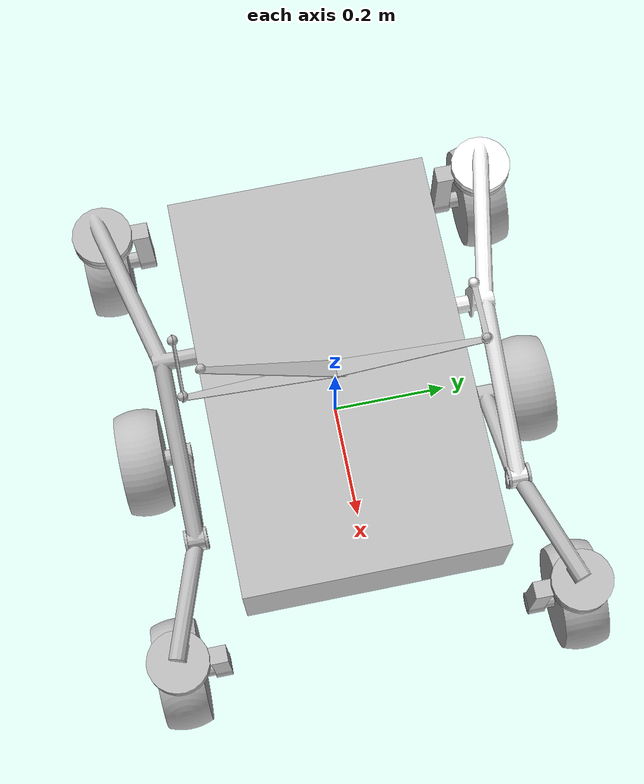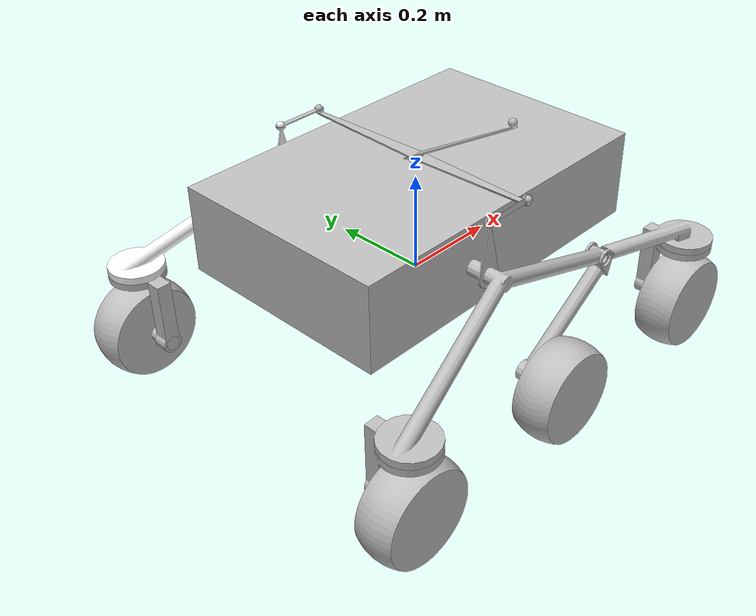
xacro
<?xml version="1.0" encoding="utf-8"?>
<robot
  name="rover"
  xmlns:xacro="http://www.ros.org/wiki/xacro">
  <link
    name="base_link">
    <inertial>
      <origin
        xyz="1.8866E-22 -4.033E-05 -0.00058075"
        rpy="0 0 0" />
      <mass
        value="54.772" />
      <inertia
        ixx="2.3882"
        ixy="-6.2633E-20"
        ixz="-2.4518E-16"
        iyy="3.1726"
        iyz="1.2828E-06"
        izz="1.0654" />
    </inertial>
    <visual>
      <origin
        xyz="0 0 0"
        rpy="0 0 0" />
      <geometry>
        <mesh
          filename="package://rover_description/meshes/base_link.STL" />
      </geometry>
      <material
        name="">
        <color
          rgba="0.74902 0.74902 0.74902 1" />
      </material>
    </visual>
    <collision>
      <origin
        xyz="0 0 0"
        rpy="0 0 0" />
      <geometry>
        <mesh
          filename="package://rover_description/meshes/base_link.STL" />
      </geometry>
    </collision>
  </link>
  <link
    name="Differ">
    <inertial>
      <origin
        xyz="-1.2186E-18 -0.0017879 2.3859E-18"
        rpy="0 0 0" />
      <mass
        value="0.040647" />
      <inertia
        ixx="0.0008313"
        ixy="6.6215E-23"
        ixz="-4.0035E-20"
        iyy="0.00083241"
        iyz="1.0165E-19"
        izz="2.1656E-06" />
    </inertial>
    <visual>
      <origin
        xyz="0 0 0"
        rpy="0 0 0" />
      <geometry>
        <mesh
          filename="package://rover_description/meshes/Differ.STL" />
      </geometry>
      <material
        name="">
        <color
          rgba="0.74902 0.74902 0.74902 1" />
      </material>
    </visual>
    <collision>
      <origin
        xyz="0 0 0"
        rpy="0 0 0" />
      <geometry>
        <mesh
          filename="package://rover_description/meshes/Differ.STL" />
      </geometry>
    </collision>
  </link>
  <joint
    name="differ_joint"
    type="fixed">
    <origin
      xyz="0 0 0.0945"
      rpy="-1.5707963267949 0 -1.5707963267949" />
    <parent
      link="base_link" />
    <child
      link="Differ" />
    <axis
      xyz="0 0 0" />
  </joint>
  <link
    name="Rocker_L">
    <inertial>
      <origin
        xyz="0.024855 -0.059946 0.064498"
        rpy="0 0 0" />
      <mass
        value="0.63929" />
      <inertia
        ixx="0.024711"
        ixy="0.0007168"
        ixz="-0.003432"
        iyy="0.024446"
        iyz="0.0025498"
        izz="0.0019279" />
    </inertial>
    <visual>
      <origin
        xyz="0 0 0"
        rpy="0 0 0" />
      <geometry>
        <mesh
          filename="package://rover_description/meshes/Rocker_L.STL" />
      </geometry>
      <material
        name="">
        <color
          rgba="0.74902 0.74902 0.74902 1" />
      </material>
    </visual>
    <collision>
      <origin
        xyz="0 0 0"
        rpy="0 0 0" />
      <geometry>
        <mesh
          filename="package://rover_description/meshes/Rocker_L.STL" />
      </geometry>
    </collision>
  </link>
  <joint
    name="rocker_left_joint"
    type="fixed">
    <origin
      xyz="0.2878 -0.1 0"
      rpy="1.5708 0 0" />
    <parent
      link="base_link" />
    <child
      link="Rocker_L" />
    <axis
      xyz="0 0 0" />
  </joint>
  <link
    name="Rotate__L_FRONT">
    <inertial>
      <origin
        xyz="-0.033142 -0.036679 0"
        rpy="0 0 0" />
      <mass
        value="0.25826" />
      <inertia
        ixx="0.00057506"
        ixy="-0.00027903"
        ixz="7.0125E-21"
        iyy="0.00053749"
        iyz="-1.8688E-20"
        izz="0.00088635" />
    </inertial>
    <visual>
      <origin
        xyz="0 0 0"
        rpy="0 0 0" />
      <geometry>
        <mesh
          filename="package://rover_description/meshes/Rotate__L_FRONT.STL" />
      </geometry>
      <material
        name="">
        <color
          rgba="0.74902 0.74902 0.74902 1" />
      </material>
    </visual>
    <collision>
      <origin
        xyz="0 0 0"
        rpy="0 0 0" />
      <geometry>
        <mesh
          filename="package://rover_description/meshes/Rotate__L_FRONT.STL" />
      </geometry>
    </collision>
  </link>

<!-- ═══ РУЛЕВЫЕ СУСТАВЫ (4 шт.) ═══════════════════════════════ -->

  <!-- Переднее левое рулевое -->
  <joint name="rotate_left_front_joint" type="revolute">
    <origin xyz="0.0697 -0.12285 0.3" rpy="0 0 0" />
    <parent link="Rocker_L" />
    <child link="Rotate__L_FRONT" />
    <axis xyz="0 1 0" />
    <limit lower="-0.7" upper="0.7" effort="10.0" velocity="1.0"/>
  </joint>
  <link
    name="Wheel_L_FRONT">
    <inertial>
      <origin
        xyz="-0.0009535 5.5511E-17 -5.5511E-17"
        rpy="0 0 0" />
      <mass
        value="2.4144" />
      <inertia
        ixx="0.011293"
        ixy="-1.0889E-18"
        ixz="7.1213E-19"
        iyy="0.0070125"
        iyz="1.9516E-18"
        izz="0.0070129" />
    </inertial>
    <visual>
      <origin
        xyz="0 0 0"
        rpy="0 0 0" />
      <geometry>
        <mesh
          filename="package://rover_description/meshes/Wheel_L_FRONT.STL" />
      </geometry>
      <material
        name="">
        <color
          rgba="0.74902 0.74902 0.74902 1" />
      </material>
    </visual>
    <collision>
      <origin
        xyz="0 0 0"
        rpy="0 0 0" />
      <geometry>
        <mesh
          filename="package://rover_description/meshes/Wheel_L_FRONT.STL" />
      </geometry>
    </collision>
  </link>

  <!-- ═══ ВЕДУЩИЕ СУСТАВЫ (6 шт.) ════════════════════════════════ -->

  <!-- Левое переднее колесо -->
  <joint name="wheel_left_front_joint" type="continuous">
    <origin xyz="0.00530000000000003 -0.1359 0"
            rpy="-1.90508433194656 0 0" />
    <parent link="Rotate__L_FRONT" />
    <child link="Wheel_L_FRONT" />
    <axis xyz="1 0 0" />
  </joint>
  <link
    name="Tiaga_L">
    <inertial>
      <origin
        xyz="4.8626E-09 0.0030688 -0.05"
        rpy="0 0 0" />
      <mass
        value="0.0052374" />
      <inertia
        ixx="6.9535E-06"
        ixy="2.5321E-13"
        ixz="-7.5811E-12"
        iyy="7.0028E-06"
        iyz="6.3608E-14"
        izz="1.0346E-07" />
    </inertial>
    <visual>
      <origin
        xyz="0 0 0"
        rpy="0 0 0" />
      <geometry>
        <mesh
          filename="package://rover_description/meshes/Tiaga_L.STL" />
      </geometry>
      <material
        name="">
        <color
          rgba="0.74902 0.74902 0.74902 1" />
      </material>
    </visual>
    <collision>
      <origin
        xyz="0 0 0"
        rpy="0 0 0" />
      <geometry>
        <mesh
          filename="package://rover_description/meshes/Tiaga_L.STL" />
      </geometry>
    </collision>
  </link>
  <joint
    name="tiaga_left_joint"
    type="fixed">
    <origin
      xyz="-0.028 0.1045 0"
      rpy="0 0 1.83810785124355" />
    <parent
      link="Rocker_L" />
    <child
      link="Tiaga_L" />
    <axis
      xyz="0 0 0" />
  </joint>
  <link
    name="Differ_L">
    <inertial>
      <origin
        xyz="-1.2186E-18 -0.0017879 2.3859E-18"
        rpy="0 0 0" />
      <mass
        value="0.040647" />
      <inertia
        ixx="0.0008313"
        ixy="6.6215E-23"
        ixz="-4.0035E-20"
        iyy="0.00083241"
        iyz="1.0165E-19"
        izz="2.1656E-06" />
    </inertial>
    <visual>
      <origin
        xyz="0 0 0"
        rpy="0 0 0" />
      <geometry>
        <mesh
          filename="package://rover_description/meshes/Differ_L.STL" />
      </geometry>
      <material
        name="">
        <color
          rgba="0.74902 0.74902 0.74902 1" />
      </material>
    </visual>
    <collision>
      <origin
        xyz="0 0 0"
        rpy="0 0 0" />
      <geometry>
        <mesh
          filename="package://rover_description/meshes/Differ_L.STL" />
      </geometry>
    </collision>
  </link>
  <joint
    name="differ_left_joint"
    type="fixed">
    <origin
      xyz="0.0589785713402176 0.253214470602821 -0.1"
      rpy="1.83810785124355 -1.5707963267949 0" />
    <parent
      link="Tiaga_L" />
    <child
      link="Differ_L" />
    <axis
      xyz="0 0 0" />
  </joint>
  <link
    name="Bogie_L">
    <inertial>
      <origin
        xyz="0.031823 -0.044529 -0.053079"
        rpy="0 0 0" />
      <mass
        value="0.46457" />
      <inertia
        ixx="0.0099613"
        ixy="-0.00044732"
        ixz="0.0018303"
        iyy="0.0093333"
        iyz="0.0026917"
        izz="0.0017571" />
    </inertial>
    <visual>
      <origin
        xyz="0 0 0"
        rpy="0 0 0" />
      <geometry>
        <mesh
          filename="package://rover_description/meshes/Bogie_L.STL" />
      </geometry>
      <material
        name="">
        <color
          rgba="0.74902 0.74902 0.74902 1" />
      </material>
    </visual>
    <collision>
      <origin
        xyz="0 0 0"
        rpy="0 0 0" />
      <geometry>
        <mesh
          filename="package://rover_description/meshes/Bogie_L.STL" />
      </geometry>
    </collision>
  </link>
  <joint
    name="bogie_left_joint"
    type="fixed">
    <origin
      xyz="0 -0.0936 -0.3"
      rpy="0 0 0" />
    <parent
      link="Rocker_L" />
    <child
      link="Bogie_L" />
    <axis
      xyz="0 0 0" />
  </joint>
  <link
    name="Rorate_L_REAR">
    <inertial>
      <origin
        xyz="-0.033142 -0.036679 0"
        rpy="0 0 0" />
      <mass
        value="0.25826" />
      <inertia
        ixx="0.00057506"
        ixy="-0.00027903"
        ixz="7.1417E-21"
        iyy="0.00053749"
        iyz="-1.8299E-20"
        izz="0.00088635" />
    </inertial>
    <visual>
      <origin
        xyz="0 0 0"
        rpy="0 0 0" />
      <geometry>
        <mesh
          filename="package://rover_description/meshes/Rorate_L_REAR.STL" />
      </geometry>
      <material
        name="">
        <color
          rgba="0.74902 0.74902 0.74902 1" />
      </material>
    </visual>
    <collision>
      <origin
        xyz="0 0 0"
        rpy="0 0 0" />
      <geometry>
        <mesh
          filename="package://rover_description/meshes/Rorate_L_REAR.STL" />
      </geometry>
    </collision>
  </link>
  <!-- Заднее левое рулевое -->
  <joint name="rotate_left_rear_joint" type="revolute">
    <origin xyz="0.0697 -0.02925 -0.199999999999998"
            rpy="0 0 0" />
    <parent link="Bogie_L" />
    <child link="Rorate_L_REAR" />
    <axis xyz="0 1 0" />
    <limit lower="-0.7" upper="0.7" effort="10.0" velocity="1.0"/>
  </joint>
  <link
    name="WHEEL_L_REAR">
    <inertial>
      <origin
        xyz="-0.0009535 0 5.5511E-17"
        rpy="0 0 0" />
      <mass
        value="2.4144" />
      <inertia
        ixx="0.011293"
        ixy="-1.2765E-19"
        ixz="1.3247E-18"
        iyy="0.0070125"
        iyz="-1.301E-18"
        izz="0.0070129" />
    </inertial>
    <visual>
      <origin
        xyz="0 0 0"
        rpy="0 0 0" />
      <geometry>
        <mesh
          filename="package://rover_description/meshes/WHEEL_L_REAR.STL" />
      </geometry>
      <material
        name="">
        <color
          rgba="0.74902 0.74902 0.74902 1" />
      </material>
    </visual>
    <collision>
      <origin
        xyz="0 0 0"
        rpy="0 0 0" />
      <geometry>
        <mesh
          filename="package://rover_description/meshes/WHEEL_L_REAR.STL" />
      </geometry>
    </collision>
  </link>
  <!-- Левое заднее колесо -->
  <joint name="wheel_left_rear_joint" type="continuous">
    <origin xyz="0.00530000000000003 -0.135899999999999 0"
            rpy="0.470327840363234 0 0" />
    <parent link="Rorate_L_REAR" />
    <child link="WHEEL_L_REAR" />
    <axis xyz="1 0 0" />
  </joint>
  <link
    name="Wheel_L_MIDDLE">
    <inertial>
      <origin
        xyz="-0.0009535 -1.2768E-15 1.5543E-15"
        rpy="0 0 0" />
      <mass
        value="2.4144" />
      <inertia
        ixx="0.011293"
        ixy="-2.8468E-20"
        ixz="-6.4672E-19"
        iyy="0.0070125"
        iyz="1.0842E-18"
        izz="0.0070129" />
    </inertial>
    <visual>
      <origin
        xyz="0 0 0"
        rpy="0 0 0" />
      <geometry>
        <mesh
          filename="package://rover_description/meshes/Wheel_L_MIDDLE.STL" />
      </geometry>
      <material
        name="">
        <color
          rgba="0.74902 0.74902 0.74902 1" />
      </material>
    </visual>
    <collision>
      <origin
        xyz="0 0 0"
        rpy="0 0 0" />
      <geometry>
        <mesh
          filename="package://rover_description/meshes/Wheel_L_MIDDLE.STL" />
      </geometry>
    </collision>
  </link>
  <!-- Левое среднее колесо (неповоротное) -->
  <joint name="wheel_left_middle_joint" type="continuous">

    <origin xyz="0.075 -0.165899999999998 0.2" rpy="2.45308493267088 0 0" />
    <parent link="Bogie_L" />
    <child link="Wheel_L_MIDDLE" />
    <axis xyz="1 0 0" />
  </joint>
  <link
    name="Rocker_R">
    <inertial>
      <origin xyz="0.024855 -0.059946 0.064498" rpy="0 0 0" />
      <mass value="0.63929" />
      <inertia
        ixx="0.024711" ixy="0.0007168" ixz="-0.003432"
        iyy="0.024446" iyz="0.0025498" izz="0.0019279" />
    </inertial>
    <visual>
      <origin
        xyz="0 0 0"
        rpy="0 0 0" />
      <geometry>
        <mesh
          filename="package://rover_description/meshes/Rocker_R.STL" />
      </geometry>
      <material
        name="">
        <color
          rgba="1 1 1 1" />
      </material>
    </visual>
    <collision>
      <origin
        xyz="0 0 0"
        rpy="0 0 0" />
      <geometry>
        <mesh
          filename="package://rover_description/meshes/Rocker_R.STL" />
      </geometry>
    </collision>
  </link>
  <joint
    name="rocker_right_joint"
    type="fixed">
    <origin
      xyz="-0.2878 -0.1 0"
      rpy="1.5707963267949 0 3.14159265358979" />
    <parent
      link="base_link" />
    <child
      link="Rocker_R" />
    <axis
      xyz="0 0 0" />
  </joint>
  <link
    name="Rotate_R_FRONT">
    <inertial>
      <origin
        xyz="-0.033142 -0.036679 0"
        rpy="0 0 0" />
      <mass
        value="0.25826" />
      <inertia
        ixx="0.00057506"
        ixy="-0.00027903"
        ixz="5.2761E-21"
        iyy="0.00053749"
        iyz="4.9087E-20"
        izz="0.00088635" />
    </inertial>
    <visual>
      <origin
        xyz="0 0 0"
        rpy="0 0 0" />
      <geometry>
        <mesh
          filename="package://rover_description/meshes/Rotate_R_FRONT.STL" />
      </geometry>
      <material
        name="">
        <color
          rgba="0.74902 0.74902 0.74902 1" />
      </material>
    </visual>
    <collision>
      <origin
        xyz="0 0 0"
        rpy="0 0 0" />
      <geometry>
        <mesh
          filename="package://rover_description/meshes/Rotate_R_FRONT.STL" />
      </geometry>
    </collision>
  </link>
  <!-- Переднее правое рулевое -->
  <joint name="rotate_right_front_joint" type="revolute">
    <origin xyz="0.0697 -0.12285 -0.3"
            rpy="0 0 0" />
    <parent link="Rocker_R" />
    <child link="Rotate_R_FRONT" />
    <axis xyz="0 1 0" />
    <limit lower="-0.7" upper="0.7" effort="10.0" velocity="1.0"/>
  </joint>
  <link
    name="Wheel_R_FRONT">
    <inertial>
      <origin
        xyz="-0.0009535 0 0"
        rpy="0 0 0" />
      <mass
        value="2.4144" />
      <inertia
        ixx="0.011293"
        ixy="1.8162E-18"
        ixz="6.9564E-19"
        iyy="0.0070125"
        iyz="2.1684E-18"
        izz="0.0070129" />
    </inertial>
    <visual>
      <origin
        xyz="0 0 0"
        rpy="0 0 0" />
      <geometry>
        <mesh
          filename="package://rover_description/meshes/Wheel_R_FRONT.STL" />
      </geometry>
      <material
        name="">
        <color
          rgba="0.74902 0.74902 0.74902 1" />
      </material>
    </visual>
    <collision>
      <origin
        xyz="0 0 0"
        rpy="0 0 0" />
      <geometry>
        <mesh
          filename="package://rover_description/meshes/Wheel_R_FRONT.STL" />
      </geometry>
    </collision>
  </link>
  <!-- Правое переднее колесо -->
  <joint name="wheel_right_front_joint" type="continuous">
    <origin xyz="0.00530000000000003 -0.1359 0"
            rpy="1.04299200870355 0 0" />
    <parent link="Rotate_R_FRONT" />
    <child link="Wheel_R_FRONT" />
    <axis xyz="1 0 0" />
  </joint>
  <link
    name="Tiaga_R">
    <inertial>
      <origin
        xyz="-1.2764E-11 0.0030688 0.05"
        rpy="0 0 0" />
      <mass
        value="0.0052374" />
      <inertia
        ixx="6.9535E-06"
        ixy="-5.846E-16"
        ixz="-7.5768E-12"
        iyy="7.0028E-06"
        iyz="-1.4705E-16"
        izz="1.0346E-07" />
    </inertial>
    <visual>
      <origin
        xyz="0 0 0"
        rpy="0 0 0" />
      <geometry>
        <mesh
          filename="package://rover_description/meshes/Tiaga_R.STL" />
      </geometry>
      <material
        name="">
        <color
          rgba="0.74902 0.74902 0.74902 1" />
      </material>
    </visual>
    <collision>
      <origin
        xyz="0 0 0"
        rpy="0 0 0" />
      <geometry>
        <mesh
          filename="package://rover_description/meshes/Tiaga_R.STL" />
      </geometry>
    </collision>
  </link>
  <joint
    name="tiaga_right_joint"
    type="fixed">
    <origin
      xyz="-0.028 0.1045 0"
      rpy="0 0 3.14117217588919" />
    <parent
      link="Rocker_R" />
    <child
      link="Tiaga_R" />
    <axis
      xyz="0 0 0" />
  </joint>
  <link
    name="Differ_R">
    <inertial>
      <origin
        xyz="-1.2219E-18 -0.0017879 4.9907E-18"
        rpy="0 0 0" />
      <mass
        value="0.040647" />
      <inertia
        ixx="0.0008313"
        ixy="6.6857E-23"
        ixz="-4.0035E-20"
        iyy="0.00083241"
        iyz="1.0163E-19"
        izz="2.1656E-06" />
    </inertial>
    <visual>
      <origin
        xyz="0 0 0"
        rpy="0 0 0" />
      <geometry>
        <mesh
          filename="package://rover_description/meshes/Differ_R.STL" />
      </geometry>
      <material
        name="">
        <color
          rgba="0.74902 0.74902 0.74902 1" />
      </material>
    </visual>
    <collision>
      <origin
        xyz="0 0 0"
        rpy="0 0 0" />
      <geometry>
        <mesh
          filename="package://rover_description/meshes/Differ_R.STL" />
      </geometry>
    </collision>
  </link>
  <joint
    name="differ_right_joint"
    type="fixed">
    <origin
      xyz="0.259795772256604 0.0101092392193916 0.1"
      rpy="0.00042047770088156 1.5707963267949 0" />
    <parent
      link="Tiaga_R" />
    <child
      link="Differ_R" />
    <axis
      xyz="0 0 0" />
  </joint>
  <link
    name="Bogie_R">
    <inertial>
      <origin
        xyz="0.031823 -0.044529 0.05308"
        rpy="0 0 0" />
      <mass
        value="0.46458" />
      <inertia
        ixx="0.0099614"
        ixy="-0.00044731"
        ixz="-0.0018303"
        iyy="0.0093333"
        iyz="-0.0026917"
        izz="0.0017571" />
    </inertial>
    <visual>
      <origin
        xyz="0 0 0"
        rpy="0 0 0" />
      <geometry>
        <mesh
          filename="package://rover_description/meshes/Bogie_R.STL" />
      </geometry>
      <material
        name="">
        <color
          rgba="0.74902 0.74902 0.74902 1" />
      </material>
    </visual>
    <collision>
      <origin
        xyz="0 0 0"
        rpy="0 0 0" />
      <geometry>
        <mesh
          filename="package://rover_description/meshes/Bogie_R.STL" />
      </geometry>
    </collision>
  </link>
  <joint
    name="bogie_right_joint"
    type="fixed">
    <origin
      xyz="0 -0.0936 0.3"
      rpy="0 0 0" />
    <parent
      link="Rocker_R" />
    <child
      link="Bogie_R" />
    <axis
      xyz="0 0 0" />
  </joint>
  <link
    name="Rotate_R_REAR">
    <inertial>
      <origin
        xyz="-0.033142 -0.036679 0"
        rpy="0 0 0" />
      <mass
        value="0.25826" />
      <inertia
        ixx="0.00057506"
        ixy="-0.00027903"
        ixz="3.5512E-21"
        iyy="0.00053749"
        iyz="-7.5345E-20"
        izz="0.00088635" />
    </inertial>
    <visual>
      <origin
        xyz="0 0 0"
        rpy="0 0 0" />
      <geometry>
        <mesh
          filename="package://rover_description/meshes/Rotate_R_REAR.STL" />
      </geometry>
      <material
        name="">
        <color
          rgba="0.74902 0.74902 0.74902 1" />
      </material>
    </visual>
    <collision>
      <origin
        xyz="0 0 0"
        rpy="0 0 0" />
      <geometry>
        <mesh
          filename="package://rover_description/meshes/Rotate_R_REAR.STL" />
      </geometry>
    </collision>
  </link>

  <!-- Заднее правое рулевое -->
  <joint name="rotate_right_rear_joint" type="revolute">
    <origin xyz="0.0697 -0.02925 0.2" rpy="0 0 0" />
    <parent link="Bogie_R" />
    <child link="Rotate_R_REAR" />
    <axis xyz="0 1 0" />
    <limit lower="-0.7" upper="0.7" effort="10.0" velocity="1.0"/>
  </joint>
  <link
    name="Wheel_R_REAR">
    <inertial>
      <origin
        xyz="-0.0009535 0 0"
        rpy="0 0 0" />
      <mass
        value="2.4144" />
      <inertia
        ixx="0.011293"
        ixy="-3.4168E-18"
        ixz="7.9905E-19"
        iyy="0.0070125"
        iyz="1.6805E-18"
        izz="0.0070129" />
    </inertial>
    <visual>
      <origin
        xyz="0 0 0"
        rpy="0 0 0" />
      <geometry>
        <mesh
          filename="package://rover_description/meshes/Wheel_R_REAR.STL" />
      </geometry>
      <material
        name="">
        <color
          rgba="0.74902 0.74902 0.74902 1" />
      </material>
    </visual>
    <collision>
      <origin
        xyz="0 0 0"
        rpy="0 0 0" />
      <geometry>
        <mesh
          filename="package://rover_description/meshes/Wheel_R_REAR.STL" />
      </geometry>
    </collision>
  </link>
  <!-- Правое заднее колесо -->
  <joint name="wheel_right_rear_joint" type="continuous">
    <origin xyz="0.00530000000000003 -0.1359 0"
            rpy="-0.0246758236588165 0 0" />
    <parent link="Rotate_R_REAR" />
    <child link="Wheel_R_REAR" />
    <axis xyz="1 0 0" />
  </joint>
  <link
    name="Wheel_R_MIDDLE">
    <inertial>
      <origin
        xyz="-0.0009535 -5.5511E-17 2.7756E-17"
        rpy="0 0 0" />
      <mass
        value="2.4144" />
      <inertia
        ixx="0.011293"
        ixy="1.2851E-18"
        ixz="-3.8426E-19"
        iyy="0.0070125"
        iyz="-1.301E-18"
        izz="0.0070129" />
    </inertial>
    <visual>
      <origin
        xyz="0 0 0"
        rpy="0 0 0" />
      <geometry>
        <mesh
          filename="package://rover_description/meshes/Wheel_R_MIDDLE.STL" />
      </geometry>
      <material
        name="">
        <color
          rgba="0.74902 0.74902 0.74902 1" />
      </material>
    </visual>
    <collision>
      <origin
        xyz="0 0 0"
        rpy="0 0 0" />
      <geometry>
        <mesh
          filename="package://rover_description/meshes/Wheel_R_MIDDLE.STL" />
      </geometry>
    </collision>
  </link>
  <!-- Правое среднее колесо (неповоротное) -->
  <joint name="wheel_right_middle_joint" type="continuous">
    <origin xyz="0.075 -0.1659 -0.2"
            rpy="-2.58022563369304 0 0" />
    <parent link="Bogie_R" />
    <child link="Wheel_R_MIDDLE" />
    <axis xyz="1 0 0" />
  </joint>

  <link name="base_footprint">
    <inertial>
      <origin xyz="0 0 0" rpy="0 0 0"/>
      <mass value="0.001"/>
      <inertia ixx="0.001" ixy="0" ixz="0"
               iyy="0.001" iyz="0" izz="0.001"/>
    </inertial>
  </link>

  <joint name="base_footprint_joint" type="fixed">
    <origin xyz="0 0 0.15" rpy="0 0 -1.5708"/>
    <parent link="base_footprint"/>
    <child  link="base_link"/>
  </joint>

  <!-- ДОБАВЛЕНО: подключение Gazebo-плагинов -->
  <xacro:include filename="$(find rover_description)/urdf/gazebo_plugins.xacro"/>

</robot>
